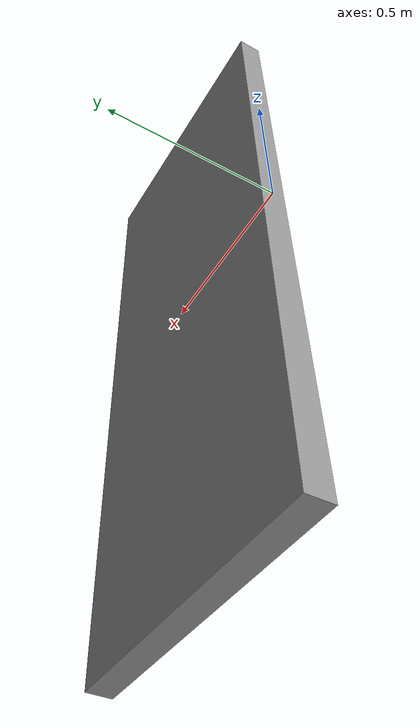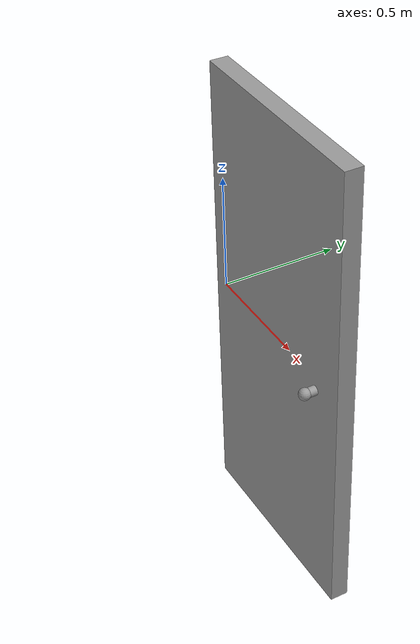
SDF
<?xml version='1.0'?>
<sdf version='1.6'>
  <model name='simple_door2'>
    <link name='link'>
      <self_collide>0</self_collide>
      <enable_wind>0</enable_wind>
      <kinematic>0</kinematic>
      <pose frame=''>0.45 0 -0 0 -0 0</pose>
      <gravity>0</gravity>
      <visual name='visual'>
        <geometry>
          <box>
            <size>0.9 0.075 2</size>
          </box>
        </geometry>
        <material>
          <script>
            <name>Gazebo/Grey</name>
            <uri>file://media/materials/scripts/gazebo.material</uri>
          </script>
          <shader type='pixel'>
            <normal_map>__default__</normal_map>
          </shader>
          <ambient>0.3 0.3 0.3 1</ambient>
          <diffuse>0.7 0.7 0.7 1</diffuse>
          <specular>0.01 0.01 0.01 1</specular>
          <emissive>0 0 0 1</emissive>
        </material>
        <pose frame=''>0 0 0 0 -0 0</pose>
        <transparency>0</transparency>
        <cast_shadows>1</cast_shadows>
      </visual>
      <collision name='collision'>
        <laser_retro>0</laser_retro>
        <max_contacts>10</max_contacts>
        <pose frame=''>0 0 0 0 -0 0</pose>
        <geometry>
          <box>
            <size>0.9 0.075 2</size>
          </box>
        </geometry>
      </collision>

    </link>
    <link name='link_2'>
      <pose frame=''>0.750001 -0.0525 -0 1.57 6e-06 0</pose>
      <gravity>0</gravity>
      <self_collide>0</self_collide>
      <kinematic>0</kinematic>
      <enable_wind>0</enable_wind>
      <visual name='visual'>
        <pose frame=''>0 0 0 0 -0 0</pose>
        <geometry>
          <cylinder>
            <radius>0.02</radius>
            <length>0.03</length>
          </cylinder>
        </geometry>
        <material>
          <lighting>1</lighting>
          <script>
            <uri>file://media/materials/scripts/gazebo.material</uri>
            <name>Gazebo/Grey</name>
          </script>
          <shader type='pixel'>
            <normal_map>__default__</normal_map>
          </shader>
          <ambient>0.3 0.3 0.3 1</ambient>
          <diffuse>0.7 0.7 0.7 1</diffuse>
          <specular>0.01 0.01 0.01 1</specular>
          <emissive>0 0 0 1</emissive>
        </material>
        <transparency>0</transparency>
        <cast_shadows>1</cast_shadows>
      </visual>
       <collision name='collision'>
			<laser_retro>0</laser_retro>
			<max_contacts>10</max_contacts>
			<pose frame=''>0 0 0 0 -0 0</pose>
			<geometry>
			  <cylinder>
				<radius>0.02</radius>
				<length>0.03</length>
			  </cylinder>
			</geometry>
        </collision>

    </link>
    <link name='link_3'>
      <pose frame=''>0.750001 -0.0825 2.4e-05 -6.1e-05 6e-06 0.010426</pose>
      <gravity>0</gravity>
      <self_collide>0</self_collide>
      <kinematic>0</kinematic>
      <enable_wind>0</enable_wind>
      <visual name='visual'>
        <pose frame=''>0 0 0 0 -0 0</pose>
        <geometry>
          <sphere>
            <radius>0.025</radius>
          </sphere>
        </geometry>
        <material>
          <lighting>1</lighting>
          <script>
            <uri>file://media/materials/scripts/gazebo.material</uri>
            <name>Gazebo/Grey</name>
          </script>
          <shader type='pixel'>
            <normal_map>__default__</normal_map>
          </shader>
          <ambient>0.3 0.3 0.3 1</ambient>
          <diffuse>0.7 0.7 0.7 1</diffuse>
          <specular>0.01 0.01 0.01 1</specular>
          <emissive>0 0 0 1</emissive>
        </material>
        <transparency>0</transparency>
        <cast_shadows>1</cast_shadows>
      </visual>
      <collision name='collision'>
        <laser_retro>0</laser_retro>
        <max_contacts>10</max_contacts>
        <pose frame=''>0 0 0 0 -0 0</pose>
        <geometry>
          <sphere>
            <radius>0.025</radius>
          </sphere>
        </geometry>
       </collision>
    </link>
    <joint name='link_2_JOINT_3' type='fixed'>
      <parent>link_2</parent>
      <child>link_3</child>
      <pose frame=''>0 0 0 0 -0 0</pose>
      <physics>
        <ode>
          <limit>
            <cfm>0</cfm>
            <erp>0.2</erp>
          </limit>
          <suspension>
            <cfm>0</cfm>
            <erp>0.2</erp>
          </suspension>
        </ode>
      </physics>
    </joint>
    <joint name='link_JOINT_2' type='revolute'>
      <parent>link</parent>
      <child>link_2</child>
      <pose frame=''>0 0 0 0 -0 0</pose>
      <axis>
        <xyz>1 0 0</xyz>
        <use_parent_model_frame>0</use_parent_model_frame>
        <limit>
          <lower>-1.79769e+308</lower>
          <upper>1.79769e+308</upper>
          <effort>-1</effort>
          <velocity>-1</velocity>
        </limit>
        <dynamics>
          <spring_reference>0</spring_reference>
          <spring_stiffness>0</spring_stiffness>
          <damping>0</damping>
        </dynamics>
      </axis>
      <physics>
        <ode>
          <limit>
            <cfm>0</cfm>
            <erp>0.2</erp>
          </limit>
          <suspension>
            <cfm>0</cfm>
            <erp>0.2</erp>
          </suspension>
        </ode>
      </physics>
    </joint>
    <static>0</static>
    <allow_auto_disable>1</allow_auto_disable>
  </model>
</sdf>
